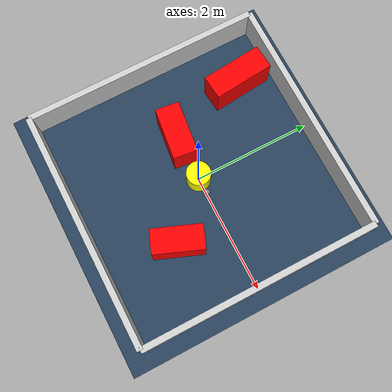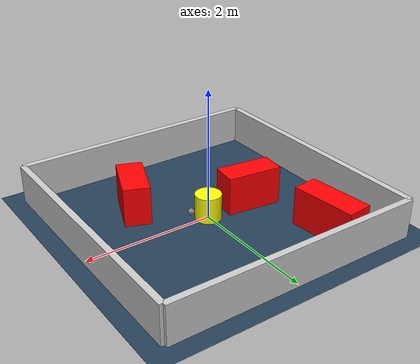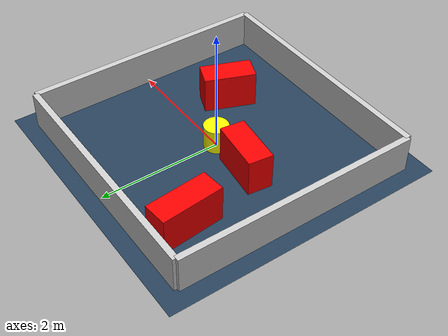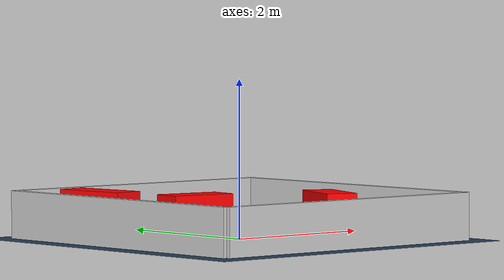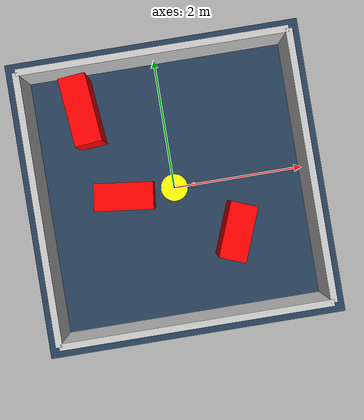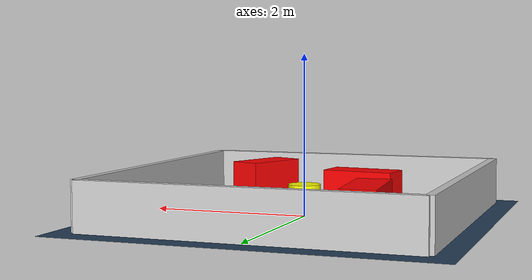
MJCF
<?xml version="1.0" ?>
<mujoco model="generated_environment">
  <option timestep="0.01" integrator="RK4" cone="elliptic"/>
  <default>
    <geom density="1"/>
  </default>
  <asset>
    <texture builtin="gradient" height="3072" rgb1="0.3 0.5 0.7" rgb2="0 0 0" type="skybox" width="512"/>
    <texture builtin="checker" height="300" mark="edge" markrgb="0.8 0.8 0.8" name="groundplane" rgb1="0.2 0.3 0.4" rgb2="0.1 0.2 0.3" type="2d" width="300"/>
    <material name="groundplane" reflectance="0.2" texrepeat="5 5" texture="groundplane" texuniform="true"/>
    <material name="robot" rgba="0.0 1.0 0.0 1"/>
  </asset>
  <worldbody>
    <light dir="0 0 -1" directional="true" pos="0 0 1.5"/>
    <geom condim="4" friction="1.0 0.005 0.001" material="groundplane" name="floor" size="0 0 0.05" type="plane"/>
    <body name="walls">
      <geom name="wall_1" condim="4" pos="-2.0 0.0 0.3" rgba="0.800000011920929 0.800000011920929 0.800000011920929 1.0" size="0.05 2.0 0.3" type="box"/>
      <geom name="wall_2" condim="4" pos="2.0 0.0 0.3" rgba="0.800000011920929 0.800000011920929 0.800000011920929 1.0" size="0.05 2.0 0.3" type="box"/>
      <geom name="wall_3" condim="4" pos="0.0 -2.0 0.3" rgba="0.800000011920929 0.800000011920929 0.800000011920929 1.0" size="2.0 0.05 0.3" type="box"/>
      <geom name="wall_4" condim="4" pos="0.0 2.0 0.3" rgba="0.800000011920929 0.800000011920929 0.800000011920929 1.0" size="2.0 0.05 0.3" type="box"/>
    </body>
    <body name="robot">
      <joint name="joint_x" type="slide" pos="0 0 0" axis="1 0 0"/>
      <joint name="joint_y" type="slide" pos="0 0 0" axis="0 1 0"/>
      <geom name="robot" type="sphere" pos="0.3 0.0 0.2" size="0.05" mass="5." friction="1.0 0.005 0.0001" condim="4" rgba="0.5 0.5 0.5 1.0"/>
      <site name="sensor_ball"/>
    </body>
    <body name="obstacle_movable_1">
      <geom name="obstacle_movable_1" condim="4" pos="0.0 0.0 0.2" euler="0 0 0.0" friction="1.0 0.005 0.001" rgba="1.0 1.0 0.0 1.0" size="0.2 0.2 0.0" type="cylinder" mass="0.1"/>
      <joint type="free"/>
    </body>
    <body name="obstacle_2_static">
      <geom name="obstacle_2_static" condim="4" pos="-1.1646461393288041 1.3267891120495248 0.3" euler="0 0 95.44883370342725" friction="1.0 0.005 0.001" rgba="1 0 0 1" size="0.507630458361068 0.2 0.3" type="box"/>
    </body>
    <body name="obstacle_3_static">
      <geom name="obstacle_3_static" condim="4" pos="-0.7432378085991445 -0.010137871805965704 0.3" euler="0 0 173.08705170183865" friction="1.0 0.005 0.001" rgba="1 0 0 1" size="0.4314231972997633 0.2 0.3" type="box"/>
    </body>
    <body name="obstacle_4_static">
      <geom name="obstacle_4_static" condim="4" pos="0.8085132045994592 -0.7822627073825266 0.3" euler="0 0 248.47343577630946" friction="1.0 0.005 0.001" rgba="1 0 0 1" size="0.4172304392094438 0.2 0.3" type="box"/>
    </body>
  </worldbody>
  <actuator>
    <motor name="actuator_x" joint="joint_x" gear="1" ctrlrange="-1 1"/>
    <motor name="actuator_y" joint="joint_y" gear="1" ctrlrange="-1 1"/>
  </actuator>
</mujoco>
